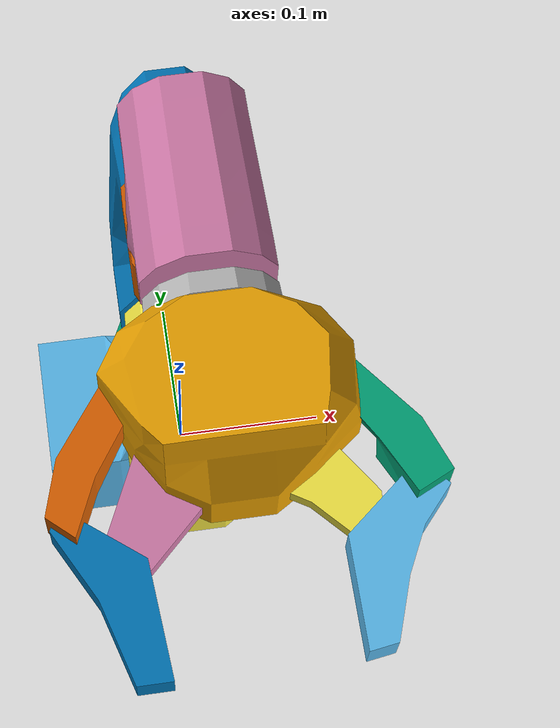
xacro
<?xml version="1.0"?>
<robot xmlns:xacro="http://www.ros.org/wiki/xacro" name="firefighter">
    <xacro:arg name="initial_positions_file" default="initial_positions.yaml" />

    <!-- Import firefighter urdf file -->
    <xacro:include filename="$(find mycobot_320pi)/urdf/mycobot_320pi_2022_gripper.urdf" />

    <!-- Import control_xacro -->
    <xacro:include filename="firefighter.ros2_control.xacro" />

    <xacro:firefighter_ros2_control name="FakeSystem" initial_positions_file="$(arg initial_positions_file)"/>

</robot>

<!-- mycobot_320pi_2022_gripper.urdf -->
<robot  xmlns:xacro="http://www.ros.org/wiki/xacro" name="firefighter" >

  <link name="base_link"/>

  <link name="base">
    <visual>
      <geometry>
       <mesh filename="package://mycobot_320pi/meshes/visual/base.dae"/>
      </geometry>
    <origin xyz = "0.0 0 0 " rpy = " 0 0 3.1415926"/>
    </visual>
    <collision>
      <geometry>
       <mesh filename="package://mycobot_320pi/meshes/collision/base.stl"/>
      </geometry>
      <origin xyz = "0.0 0 0 " rpy = " 0 0 3.1415926"/>
      </collision>
  </link>

  <link name="link1">
    <visual>
      <geometry>
       <mesh filename="package://mycobot_320pi/meshes/visual/link1.dae"/>
      </geometry>
      <origin xyz = "0.115 -0.172 -0.086" rpy = " 0 0 3.1415926"/>
    </visual>
    <collision>
      <geometry>
       <mesh filename="package://mycobot_320pi/meshes/collision/link1.stl"/>
      </geometry>
      <origin xyz = "0.115 -0.172 -0.086" rpy = " 0 0 3.1415926"/>
    </collision>
  </link>

  <link name="link2">
    <visual>
      <geometry>
       <mesh filename="package://mycobot_320pi/meshes/visual/link2.dae"/>
      </geometry>
      <origin xyz = "-0.075 -0.115 -0.022 " rpy = " 1.5708 0 1.5708"/>
    </visual>
    <collision>
      <geometry>
       <mesh filename="package://mycobot_320pi/meshes/collision/link2.stl"/>
      </geometry>
      <origin xyz = "-0.075 -0.115 -0.022 " rpy = " 1.5708 0 1.5708"/>
    </collision>
  </link>

  <link name="link3">
    <visual>
      <geometry>
       <mesh filename="package://mycobot_320pi/meshes/visual/link3.dae"/>
      </geometry>
      <origin xyz = "-0.22 -0.115 0.142 " rpy = " 1.5708 0 1.5708"/>
    </visual>
    <collision>
      <geometry>
       <mesh filename="package://mycobot_320pi/meshes/collision/link3.stl"/>
      </geometry>
      <origin xyz = "-0.22 -0.115 0.142 " rpy = " 1.5708 0 1.5708"/>
    </collision>
  </link>

  <link name="link4">
    <visual>
      <geometry>
       <mesh filename="package://mycobot_320pi/meshes/visual/link4.dae"/>
      </geometry>
      <origin xyz = "-0.115 0.338 -0.1435" rpy = " 1.5708 0 0"/>
    </visual>
    <collision>
      <geometry>
       <mesh filename="package://mycobot_320pi/meshes/collision/link4.stl"/>
      </geometry>
      <origin xyz = "-0.115 0.338 -0.1435" rpy = " 1.5708 0 0"/>
    </collision>
  </link>

  <link name="link5">
    <visual>
      <geometry>
       <mesh filename="package://mycobot_320pi/meshes/visual/link5.dae"/>
      </geometry>
      <origin xyz = "-0.1149 -0.0322  -0.482 " rpy = " 0  0 0"/>
    </visual>
    <collision>
      <geometry>
       <mesh filename="package://mycobot_320pi/meshes/collision/link5.stl"/>
      </geometry>
      <origin xyz = "-0.1149 -0.0322  -0.482 " rpy = " 0  0 0"/>
    </collision>
  </link>

  <link name="link6">
    <visual>
      <geometry>
       <mesh filename="package://mycobot_320pi/meshes/visual/link6.dae"/>
      </geometry>
      <origin xyz = "-0.11478 0.433 -0.15 " rpy = " 1.5708 0 0"/>
    </visual>
    <collision>
      <geometry>
       <mesh filename="package://mycobot_320pi/meshes/collision/link6.stl"/>
      </geometry>
      <origin xyz = "-0.11478 0.433 -0.15 " rpy = " 1.5708 0 0"/>
    </collision>
  </link>

  <link name="gripper_base">
        <visual>
            <geometry>
                <mesh filename="package://mycobot_320pi/meshes/visual/gripper_base.dae" />
            </geometry>
            <origin xyz="-0.02 0.012 -0.018 " rpy=" 0 0 1.5708" />
        </visual>
        <collision>
            <geometry>
                <mesh filename="package://mycobot_320pi/meshes/collision/gripper_base.stl" />
            </geometry>
            <origin xyz="-0.02 0.012 -0.018 " rpy=" 0 0 1.5708" />
        </collision>
        <inertial>
            <mass value="0.1" />
            <origin xyz="0 0 0" rpy="0 0 0" />
            <inertia ixx="0.03" iyy="0.03" izz="0.03" ixy="0.0" ixz="0.0" iyz="0.0" />
        </inertial>
  </link>

  <link name="gripper_left1">
      <visual>
          <geometry>
              <mesh filename="package://mycobot_320pi/meshes/visual/gripper_left1.dae" />
          </geometry>
          <origin xyz="0.036 -0.052 0.0 " rpy=" 0 0 1.5708" />
      </visual>
      <collision>
          <geometry>
              <mesh filename="package://mycobot_320pi/meshes/collision/gripper_left1.stl" />
          </geometry>
          <origin xyz="0.036 -0.052 0.0 " rpy=" 0 0 1.5708" />
      </collision>
      <inertial>
          <mass value="0.1" />
          <origin xyz="0 0 0" rpy="0 0 0" />
          <inertia ixx="0.03" iyy="0.03" izz="0.03" ixy="0.0" ixz="0.0" iyz="0.0" />
      </inertial>
  </link>

  <link name="gripper_left2">
      <visual>
          <geometry>
              <mesh filename="package://mycobot_320pi/meshes/visual/gripper_left2.dae" />
          </geometry>
          <origin xyz="0.03 0.024 -0.018 " rpy=" 0 0 1.5708" />
      </visual>
      <collision>
          <geometry>
              <mesh filename="package://mycobot_320pi/meshes/collision/gripper_left2.stl" />
          </geometry>
          <origin xyz="0.03 0.024 -0.018 " rpy=" 0 0 1.5708" />
      </collision>
      <inertial>
          <mass value="0.1" />
          <origin xyz="0 0 0" rpy="0 0 0" />
          <inertia ixx="0.03" iyy="0.03" izz="0.03" ixy="0.0" ixz="0.0" iyz="0.0" />
      </inertial>
  </link>

  <link name="gripper_left3">
      <visual>
          <geometry>
              <mesh filename="package://mycobot_320pi/meshes/visual/gripper_left3.dae" />
          </geometry>
          <origin xyz="0.034 0.0 -0.012 " rpy=" 0 3.14159 -1.5708" />
      </visual>
      <collision>
          <geometry>
              <mesh filename="package://mycobot_320pi/meshes/collision/gripper_left3.stl" />
          </geometry>
          <origin xyz="0.034 0.0 -0.012 " rpy=" 0 3.14159 -1.5708" />
      </collision>
      <inertial>
          <mass value="0.1" />
          <origin xyz="0 0 0" rpy="0 0 0" />
          <inertia ixx="0.03" iyy="0.03" izz="0.03" ixy="0.0" ixz="0.0" iyz="0.0" />
      </inertial>
  </link>

  <link name="gripper_right1">
      <visual>
          <geometry>
              <mesh filename="package://mycobot_320pi/meshes/visual/gripper_right1.dae" />
          </geometry>
          <origin xyz="-0.072 -0.05 0.0 " rpy=" 0 0 1.5708" />
      </visual>
      <collision>
          <geometry>
              <mesh filename="package://mycobot_320pi/meshes/collision/gripper_right1.stl" />
          </geometry>
          <origin xyz="-0.072 -0.05 0.0 " rpy=" 0 0 1.5708" />
      </collision>
      <inertial>
          <mass value="0.1" />
          <origin xyz="0 0 0" rpy="0 0 0" />
          <inertia ixx="0.03" iyy="0.03" izz="0.03" ixy="0.0" ixz="0.0" iyz="0.0" />
      </inertial>
  </link>

  <link name="gripper_right2">
      <visual>
          <geometry>
              <mesh filename="package://mycobot_320pi/meshes/visual/gripper_right2.dae" />
          </geometry>
          <origin xyz="-0.066 0.023 -0.018 " rpy=" 0 0 1.5708" />
      </visual>
      <collision>
          <geometry>
              <mesh filename="package://mycobot_320pi/meshes/collision/gripper_right2.stl" />
          </geometry>
          <origin xyz="-0.066 0.023 -0.018 " rpy=" 0 0 1.5708" />
      </collision>
      <inertial>
          <mass value="0.1" />
          <origin xyz="0 0 0" rpy="0 0 0" />
          <inertia ixx="0.03" iyy="0.03" izz="0.03" ixy="0.0" ixz="0.0" iyz="0.0" />
      </inertial>
  </link>

  <link name="gripper_right3">
      <visual>
          <geometry>
              <mesh filename="package://mycobot_320pi/meshes/visual/gripper_right3.dae" />
          </geometry>
          <origin xyz="0 0.0 -0.012 " rpy=" 0 3.14159 -1.5708" />
      </visual>
      <collision>
          <geometry>
              <mesh filename="package://mycobot_320pi/meshes/collision/gripper_right3.stl" />
          </geometry>
          <origin xyz="0 0.0 -0.012 " rpy=" 0 3.14159 -1.5708" />
      </collision>
      <inertial>
          <mass value="0.1" />
          <origin xyz="0 0 0" rpy="0 0 0" />
          <inertia ixx="0.03" iyy="0.03" izz="0.03" ixy="0.0" ixz="0.0" iyz="0.0" />
      </inertial>
  </link>

  <link name="tcp"/>

  <joint name="base_joint" type="fixed">
    <axis xyz="0 0 1"/>
    <parent link="base_link"/>
    <child link="base"/>
  </joint>

  <joint name="joint2_to_joint1" type="revolute">
    <axis xyz="0 0 1"/>
    <limit effort = "1000.0" lower = "-2.96" upper = "2.96" velocity = "0"/>
    <parent link="base"/>
    <child link="link1"/>
    <origin xyz= "0 0 0.162" rpy = "0 0 0"/>
  </joint>

  <joint name="joint3_to_joint2" type="revolute">
    <axis xyz="0 0 1"/>
    <limit effort = "1000.0" lower = "-2.79" upper = "2.79" velocity = "0"/>
    <parent link="link1"/>
    <child link="link2"/>
    <origin xyz= "0 0 0" rpy = "0 -1.5708 1.5708"/>
  </joint>

  <joint name="joint4_to_joint3" type="revolute">
    <axis xyz=" 0 0 1"/>
    <limit effort = "1000.0" lower = "-2.79" upper = "2.79" velocity = "0"/>
    <parent link="link2"/>
    <child link="link3"/>
    <origin xyz= "0.13635 0 0   " rpy = "0 0 0"/>
  </joint>

  <joint name="joint5_to_joint4" type="revolute">
    <axis xyz=" 0 0 1"/>
    <limit effort = "1000.0" lower = "-2.79" upper = "2.79" velocity = "0"/>
    <parent link="link3"/>
    <child link="link4"/>
     <origin xyz = "0.1205 0 0.082 " rpy = " 0 0 1.57080"/>
  </joint>

  <joint name="joint6_to_joint5" type="revolute">
    <axis xyz="0 0 1"/>
    <limit effort = "1000.0" lower = "-2.96" upper = "2.96" velocity = "0"/>
    <parent link="link4"/>
    <child link="link5"/>
     <origin xyz= "0 -0.084 0" rpy = "1.5708 0 0"/>
  </joint>

  <joint name="joint6output_to_joint6" type="revolute">
    <axis xyz="0 0 1"/>
    <limit effort = "1000.0" lower = "-3.05" upper = "3.05" velocity = "0"/>
    <parent link="link5"/>
    <child link="link6"/>
     <origin xyz= "0 0.06635 0" rpy = "-1.5708 0 0"/>
  </joint>

  <joint name="link6_to_gripper_base_fixed_jnt" type="fixed">
      <parent link="link6" />
      <child link="gripper_base" />
      <origin xyz="0 0.0 0.034" rpy="1.5708 0 0" />
  </joint>

  <joint name="mycobot_gripper_joint" type="revolute">
      <axis xyz="0 0 1" />
      <limit effort="1000.0" lower="-0.7" upper="0.3" velocity="0" />
      <parent link="gripper_base" />
      <child link="gripper_left3" />
      <origin xyz="-0.018 0.016 0" rpy="0 0 0" />
  </joint>

  <joint name="gripper_base_to_gripper_left2_mimic_jnt" type="revolute">
      <axis xyz="0 0 1" />
      <limit effort="1000.0" lower="-0.8" upper="0.5" velocity="0" />
      <parent link="gripper_base" />
      <child link="gripper_left2" />
      <origin xyz="-0.05 -0.01 0" rpy="0 0 0" />
      <mimic joint="mycobot_gripper_joint" multiplier="1.0" offset="0" />
  </joint>

  <joint name="gripper_left3_to_gripper_left1_mimic_jnt" type="revolute">
      <axis xyz="0 0 1" />
      <limit effort="1000.0" lower="-0.5" upper="0.5" velocity="0" />
      <parent link="gripper_left3" />
      <child link="gripper_left1" />
      <origin xyz="-0.0356 0.051 -0.018" rpy="0 0 0" />
      <mimic joint="mycobot_gripper_joint" multiplier="-1.0" offset="0" />
  </joint>

  <joint name="gripper_base_to_gripper_right3_mimic_jnt" type="revolute">
      <axis xyz="0 0 1" />
      <limit effort="1000.0" lower="-0.3" upper="0.7" velocity="0" />
      <parent link="gripper_base" />
      <child link="gripper_right3" />
      <origin xyz="0.018 0.016 0" rpy="0 0 0" />
      <mimic joint="mycobot_gripper_joint" multiplier="-1.0" offset="0" />
  </joint>

  <joint name="gripper_base_to_gripper_right2_mimic_jnt" type="revolute">
      <axis xyz="0 0 1" />
      <limit effort="1000.0" lower="-0.5" upper="0.8" velocity="0" />
      <parent link="gripper_base" />
      <child link="gripper_right2" />
      <origin xyz="0.046 -0.01 0" rpy="0 0 0" />
      <mimic joint="mycobot_gripper_joint" multiplier="-1.0" offset="0" />
  </joint>

  <joint name="gripper_right3_to_gripper_right1_mimic_jnt" type="revolute">
      <axis xyz="0 0 1" />
      <limit effort="1000.0" lower="-0.5" upper="0.5" velocity="0" />
      <parent link="gripper_right3" />
      <child link="gripper_right1" />
      <origin xyz="0.033 0.051 -0.018" rpy="0 0 0" />
      <mimic joint="mycobot_gripper_joint" multiplier="1.0" offset="0" />
  </joint>

  <joint name="tcp_jnt" type="fixed">
      <parent link="gripper_base" />
      <child link="tcp" />
      <origin xyz="0 0.1125 -0.018" rpy="0 0 0" />
  </joint>

</robot>
